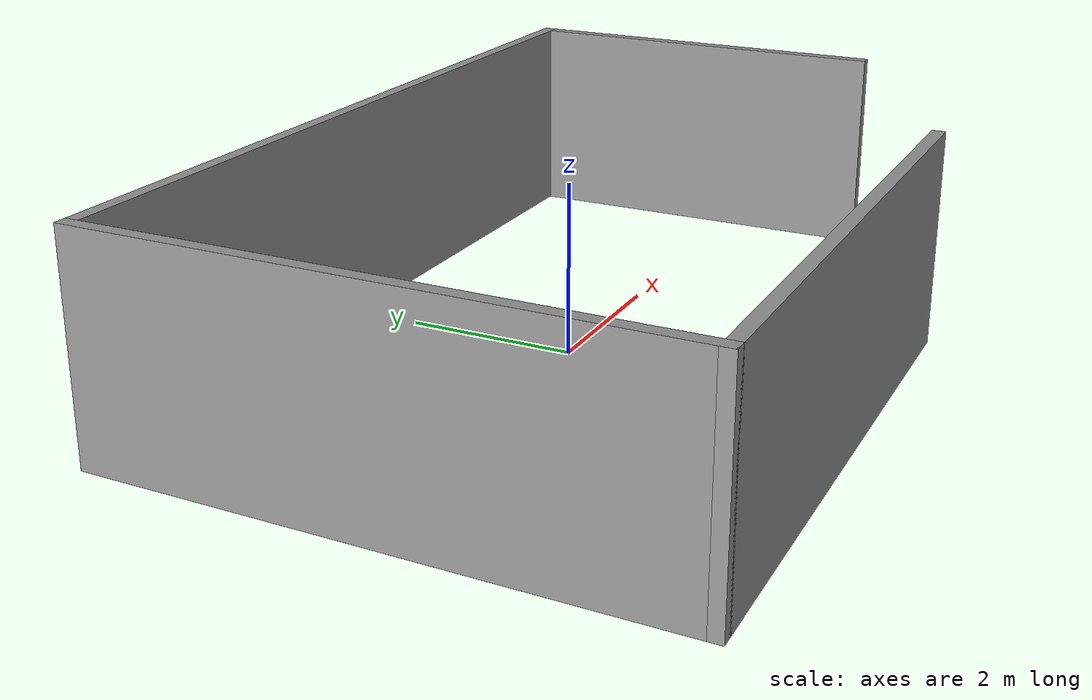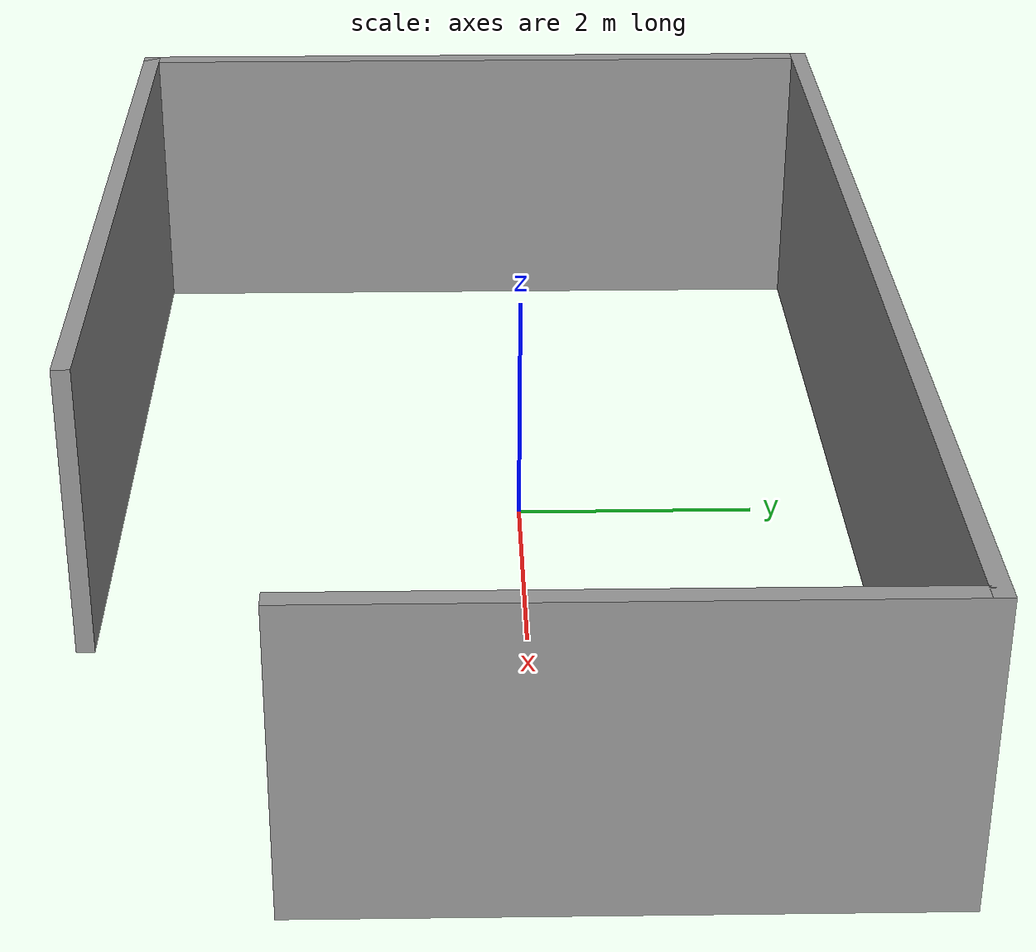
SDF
<?xml version='1.0'?>
<sdf version='1.7'>
  <model name='Untitled'>
    <pose>0.369015 -0.308537 0 0 -0 0</pose>
    <link name='Wall_3'>
      <collision name='Wall_3_Collision'>
        <geometry>
          <box>
            <size>6.5 0.15 2.5</size>
          </box>
        </geometry>
        <pose>0 0 1.25 0 -0 0</pose>
      </collision>
      <visual name='Wall_3_Visual'>
        <pose>0 0 1.25 0 -0 0</pose>
        <geometry>
          <box>
            <size>6.5 0.15 2.5</size>
          </box>
        </geometry>
        <material>
          <script>
            <uri>file://media/materials/scripts/gazebo.material</uri>
            <name>Gazebo/Grey</name>
          </script>
          <ambient>1 1 1 1</ambient>
        </material>
        <meta>
          <layer>0</layer>
        </meta>
      </visual>
      <pose>-4.925 0 0 0 -0 1.5708</pose>
    </link>
    <link name='Wall_4'>
      <collision name='Wall_4_Collision'>
        <geometry>
          <box>
            <size>10 0.15 2.5</size>
          </box>
        </geometry>
        <pose>0 0 1.25 0 -0 0</pose>
      </collision>
      <visual name='Wall_4_Visual'>
        <pose>0 0 1.25 0 -0 0</pose>
        <geometry>
          <box>
            <size>10 0.15 2.5</size>
          </box>
        </geometry>
        <material>
          <script>
            <uri>file://media/materials/scripts/gazebo.material</uri>
            <name>Gazebo/Grey</name>
          </script>
          <ambient>1 1 1 1</ambient>
        </material>
        <meta>
          <layer>0</layer>
        </meta>
      </visual>
      <pose>-0 3.175 0 0 -0 0</pose>
    </link>
    <link name='Wall_5'>
      <collision name='Wall_5_Collision'>
        <geometry>
          <box>
            <size>4.75 0.15 2.5</size>
          </box>
        </geometry>
        <pose>0 0 1.25 0 -0 0</pose>
      </collision>
      <visual name='Wall_5_Visual'>
        <pose>0 0 1.25 0 -0 0</pose>
        <geometry>
          <box>
            <size>4.75 0.15 2.5</size>
          </box>
        </geometry>
        <material>
          <script>
            <uri>file://media/materials/scripts/gazebo.material</uri>
            <name>Gazebo/Grey</name>
          </script>
          <ambient>1 1 1 1</ambient>
        </material>
        <meta>
          <layer>0</layer>
        </meta>
      </visual>
      <pose>4.925 0.875 0 0 -0 -1.5708</pose>
    </link>
    <link name='Wall_7'>
      <collision name='Wall_7_Collision'>
        <geometry>
          <box>
            <size>6.75 0.15 2.5</size>
          </box>
        </geometry>
        <pose>0 0 1.25 0 -0 0</pose>
      </collision>
      <visual name='Wall_7_Visual'>
        <pose>0 0 1.25 0 -0 0</pose>
        <geometry>
          <box>
            <size>6.75 0.15 2.5</size>
          </box>
        </geometry>
        <material>
          <script>
            <uri>file://media/materials/scripts/gazebo.material</uri>
            <name>Gazebo/Grey</name>
          </script>
          <ambient>1 1 1 1</ambient>
        </material>
        <meta>
          <layer>0</layer>
        </meta>
      </visual>
      <pose>-1.625 -3.175 0 0 -0 0</pose>
    </link>
    <static>1</static>
  </model>
</sdf>
